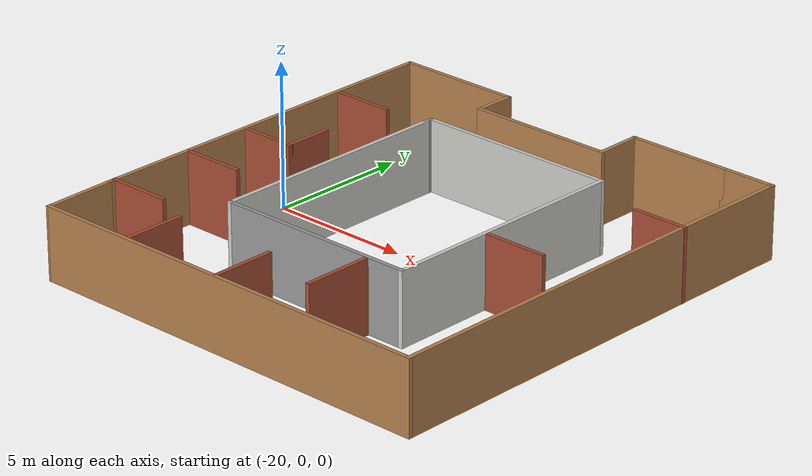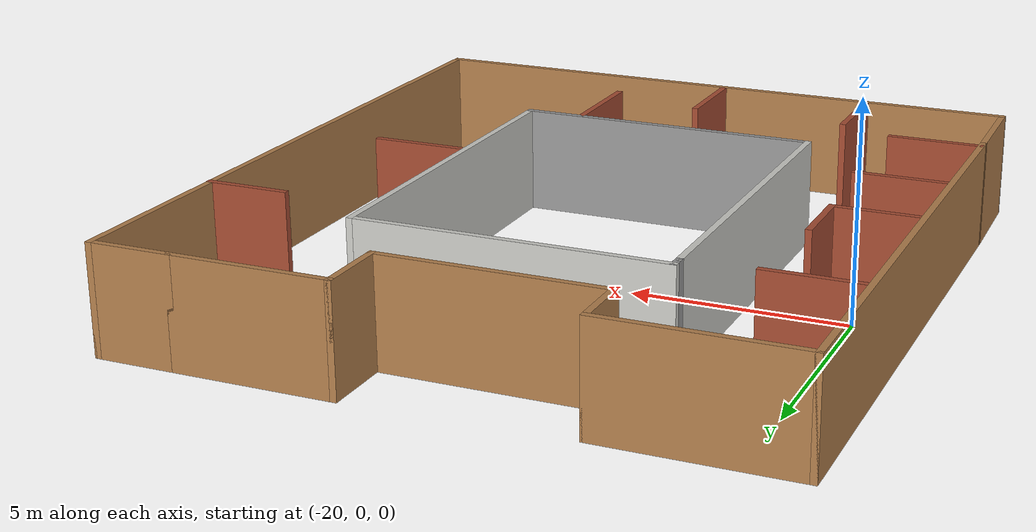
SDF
<?xml version='1.0'?>
<sdf version='1.6'>
  <model name='BuildingA'>
    <pose frame=''>-13.8778 -0.545531 0 0 -0 0</pose>
    <link name='Wall_36'>
      <collision name='Wall_36_Collision'>
        <geometry>
          <box>
            <size>8.75 0.15 2.5</size>
          </box>
        </geometry>
        <pose frame=''>0 0 1.25 0 -0 0</pose>
      </collision>
      <visual name='Wall_36_Visual'>
        <pose frame=''>0 0 1.25 0 -0 0</pose>
        <geometry>
          <box>
            <size>8.75 0.15 2.5</size>
          </box>
        </geometry>
        <material>
          <script>
            <uri>file://media/materials/scripts/gazebo.material</uri>
            <name>Gazebo/CeilingTiled</name>
          </script>
          <ambient>1 1 1 1</ambient>
        </material>
        <meta>
          <layer>0</layer>
        </meta>
      </visual>
      <pose frame=''>-3.663 0.207205 0 0 0 -1.5708</pose>
    </link>
    <link name='Wall_37'>
      <collision name='Wall_37_Collision'>
        <geometry>
          <box>
            <size>7.25 0.15 2.5</size>
          </box>
        </geometry>
        <pose frame=''>0 0 1.25 0 -0 0</pose>
      </collision>
      <visual name='Wall_37_Visual'>
        <pose frame=''>0 0 1.25 0 -0 0</pose>
        <geometry>
          <box>
            <size>7.25 0.15 2.5</size>
          </box>
        </geometry>
        <material>
          <script>
            <uri>file://media/materials/scripts/gazebo.material</uri>
            <name>Gazebo/Grey</name>
          </script>
          <ambient>1 1 1 1</ambient>
        </material>
        <meta>
          <layer>0</layer>
        </meta>
      </visual>
      <pose frame=''>-0.113004 -4.09279 0 0 -0 0</pose>
    </link>
    <link name='Wall_38'>
      <collision name='Wall_38_Collision'>
        <geometry>
          <box>
            <size>9 0.15 2.5</size>
          </box>
        </geometry>
        <pose frame=''>0 0 1.25 0 -0 0</pose>
      </collision>
      <visual name='Wall_38_Visual'>
        <pose frame=''>0 0 1.25 0 -0 0</pose>
        <geometry>
          <box>
            <size>9 0.15 2.5</size>
          </box>
        </geometry>
        <material>
          <script>
            <uri>file://media/materials/scripts/gazebo.material</uri>
            <name>Gazebo/CeilingTiled</name>
          </script>
          <ambient>1 1 1 1</ambient>
        </material>
        <meta>
          <layer>0</layer>
        </meta>
      </visual>
      <pose frame=''>3.437 0.332205 0 0 -0 1.5708</pose>
    </link>
    <link name='Wall_39'>
      <collision name='Wall_39_Collision'>
        <geometry>
          <box>
            <size>7.25 0.15 2.5</size>
          </box>
        </geometry>
        <pose frame=''>0 0 1.25 0 -0 0</pose>
      </collision>
      <visual name='Wall_39_Visual'>
        <pose frame=''>0 0 1.25 0 -0 0</pose>
        <geometry>
          <box>
            <size>7.25 0.15 2.5</size>
          </box>
        </geometry>
        <material>
          <script>
            <uri>file://media/materials/scripts/gazebo.material</uri>
            <name>Gazebo/CeilingTiled</name>
          </script>
          <ambient>1 1 1 1</ambient>
        </material>
        <meta>
          <layer>0</layer>
        </meta>
      </visual>
      <pose frame=''>-0.113004 4.7572 0 0 -0 3.14159</pose>
    </link>
    <link name='Wall_40'>
      <collision name='Wall_40_Collision'>
        <geometry>
          <box>
            <size>0.15 0.15 2.5</size>
          </box>
        </geometry>
        <pose frame=''>0 0 1.25 0 -0 0</pose>
      </collision>
      <visual name='Wall_40_Visual'>
        <pose frame=''>0 0 1.25 0 -0 0</pose>
        <geometry>
          <box>
            <size>0.15 0.15 2.5</size>
          </box>
        </geometry>
        <material>
          <script>
            <uri>file://media/materials/scripts/gazebo.material</uri>
            <name>Gazebo/Grey</name>
          </script>
          <ambient>1 1 1 1</ambient>
        </material>
        <meta>
          <layer>0</layer>
        </meta>
      </visual>
      <pose frame=''>-3.663 4.7572 0 0 -0 0</pose>
    </link>
    <link name='Wall_41'>
      <collision name='Wall_41_Collision'>
        <geometry>
          <box>
            <size>0.4 0.15 2.5</size>
          </box>
        </geometry>
        <pose frame=''>0 0 1.25 0 -0 0</pose>
      </collision>
      <visual name='Wall_41_Visual'>
        <pose frame=''>0 0 1.25 0 -0 0</pose>
        <geometry>
          <box>
            <size>0.4 0.15 2.5</size>
          </box>
        </geometry>
        <material>
          <script>
            <uri>file://media/materials/scripts/gazebo.material</uri>
            <name>Gazebo/Grey</name>
          </script>
          <ambient>1 1 1 1</ambient>
        </material>
        <meta>
          <layer>0</layer>
        </meta>
      </visual>
      <pose frame=''>-3.663 4.6322 0 0 0 -1.5708</pose>
    </link>
    <link name='Wall_44'>
      <collision name='Wall_44_Collision'>
        <geometry>
          <box>
            <size>13.5 0.15 2.5</size>
          </box>
        </geometry>
        <pose frame=''>0 0 1.25 0 -0 0</pose>
      </collision>
      <visual name='Wall_44_Visual'>
        <pose frame=''>0 0 1.25 0 -0 0</pose>
        <geometry>
          <box>
            <size>13.5 0.15 2.5</size>
          </box>
        </geometry>
        <material>
          <script>
            <uri>file://media/materials/scripts/gazebo.material</uri>
            <name>Gazebo/Wood</name>
          </script>
          <ambient>1 1 1 1</ambient>
        </material>
        <meta>
          <layer>0</layer>
        </meta>
      </visual>
      <pose frame=''>-7.45479 1.12574 0 0 -0 1.5708</pose>
    </link>
    <link name='Wall_45'>
      <collision name='Wall_45_Collision'>
        <geometry>
          <box>
            <size>4.5 0.15 2.5</size>
          </box>
        </geometry>
        <pose frame=''>0 0 1.25 0 -0 0</pose>
      </collision>
      <visual name='Wall_45_Visual'>
        <pose frame=''>0 0 1.25 0 -0 0</pose>
        <geometry>
          <box>
            <size>4.5 0.15 2.5</size>
          </box>
        </geometry>
        <material>
          <script>
            <uri>file://media/materials/scripts/gazebo.material</uri>
            <name>Gazebo/Wood</name>
          </script>
          <ambient>1 1 1 1</ambient>
        </material>
        <meta>
          <layer>0</layer>
        </meta>
      </visual>
      <pose frame=''>-5.27979 7.80074 0 0 -0 0</pose>
    </link>
    <link name='Wall_46'>
      <collision name='Wall_46_Collision'>
        <geometry>
          <box>
            <size>1.5 0.15 2.5</size>
          </box>
        </geometry>
        <pose frame=''>0 0 1.25 0 -0 0</pose>
      </collision>
      <visual name='Wall_46_Visual'>
        <pose frame=''>0 0 1.25 0 -0 0</pose>
        <geometry>
          <box>
            <size>1.5 0.15 2.5</size>
          </box>
        </geometry>
        <material>
          <script>
            <uri>file://media/materials/scripts/gazebo.material</uri>
            <name>Gazebo/Wood</name>
          </script>
          <ambient>1 1 1 1</ambient>
        </material>
        <meta>
          <layer>0</layer>
        </meta>
      </visual>
      <pose frame=''>-3.10479 7.12574 0 0 0 -1.5708</pose>
    </link>
    <link name='Wall_47'>
      <collision name='Wall_47_Collision'>
        <geometry>
          <box>
            <size>5.25 0.15 2.5</size>
          </box>
        </geometry>
        <pose frame=''>0 0 1.25 0 -0 0</pose>
      </collision>
      <visual name='Wall_47_Visual'>
        <pose frame=''>0 0 1.25 0 -0 0</pose>
        <geometry>
          <box>
            <size>5.25 0.15 2.5</size>
          </box>
        </geometry>
        <material>
          <script>
            <uri>file://media/materials/scripts/gazebo.material</uri>
            <name>Gazebo/Wood</name>
          </script>
          <ambient>1 1 1 1</ambient>
        </material>
        <meta>
          <layer>0</layer>
        </meta>
      </visual>
      <pose frame=''>-0.554785 6.45074 0 0 -0 0</pose>
    </link>
    <link name='Wall_48'>
      <collision name='Wall_48_Collision'>
        <geometry>
          <box>
            <size>1.75 0.15 2.5</size>
          </box>
        </geometry>
        <pose frame=''>0 0 1.25 0 -0 0</pose>
      </collision>
      <visual name='Wall_48_Visual'>
        <pose frame=''>0 0 1.25 0 -0 0</pose>
        <geometry>
          <box>
            <size>1.75 0.15 2.5</size>
          </box>
        </geometry>
        <material>
          <script>
            <uri>file://media/materials/scripts/gazebo.material</uri>
            <name>Gazebo/Wood</name>
          </script>
          <ambient>1 1 1 1</ambient>
        </material>
        <meta>
          <layer>0</layer>
        </meta>
      </visual>
      <pose frame=''>1.99521 7.25074 0 0 -0 1.5708</pose>
    </link>
    <link name='Wall_49'>
      <collision name='Wall_49_Collision'>
        <geometry>
          <box>
            <size>3.75 0.15 2.5</size>
          </box>
        </geometry>
        <pose frame=''>0 0 1.25 0 -0 0</pose>
      </collision>
      <visual name='Wall_49_Visual'>
        <pose frame=''>0 0 1.25 0 -0 0</pose>
        <geometry>
          <box>
            <size>3.75 0.15 2.5</size>
          </box>
        </geometry>
        <material>
          <script>
            <uri>file://media/materials/scripts/gazebo.material</uri>
            <name>Gazebo/Wood</name>
          </script>
          <ambient>1 1 1 1</ambient>
        </material>
        <meta>
          <layer>0</layer>
        </meta>
      </visual>
      <pose frame=''>3.79521 8.05074 0 0 -0 0</pose>
    </link>
    <link name='Wall_50'>
      <collision name='Wall_50_Collision'>
        <geometry>
          <box>
            <size>2 0.15 2.5</size>
          </box>
        </geometry>
        <pose frame=''>0 0 1.25 0 -0 0</pose>
      </collision>
      <visual name='Wall_50_Visual'>
        <pose frame=''>0 0 1.25 0 -0 0</pose>
        <geometry>
          <box>
            <size>2 0.15 2.5</size>
          </box>
        </geometry>
        <material>
          <script>
            <uri>file://media/materials/scripts/gazebo.material</uri>
            <name>Gazebo/Wood</name>
          </script>
          <ambient>1 1 1 1</ambient>
        </material>
        <meta>
          <layer>0</layer>
        </meta>
      </visual>
      <pose frame=''>6.52021 8.05074 0 0 -0 0</pose>
    </link>
    <link name='Wall_51'>
      <collision name='Wall_51_Collision'>
        <geometry>
          <box>
            <size>16.25 0.15 2.5</size>
          </box>
        </geometry>
        <pose frame=''>0 0 1.25 0 -0 0</pose>
      </collision>
      <visual name='Wall_51_Visual'>
        <pose frame=''>0 0 1.25 0 -0 0</pose>
        <geometry>
          <box>
            <size>16.25 0.15 2.5</size>
          </box>
        </geometry>
        <material>
          <script>
            <uri>file://media/materials/scripts/gazebo.material</uri>
            <name>Gazebo/Wood</name>
          </script>
          <ambient>1 1 1 1</ambient>
        </material>
        <meta>
          <layer>0</layer>
        </meta>
      </visual>
      <pose frame=''>7.44522 0.000742 0 0 0 -1.5708</pose>
    </link>
    <link name='Wall_52'>
      <collision name='Wall_52_Collision'>
        <geometry>
          <box>
            <size>15 0.15 2.5</size>
          </box>
        </geometry>
        <pose frame=''>0 0 1.25 0 -0 0</pose>
      </collision>
      <visual name='Wall_52_Visual'>
        <pose frame=''>0 0 1.25 0 -0 0</pose>
        <geometry>
          <box>
            <size>15 0.15 2.5</size>
          </box>
        </geometry>
        <material>
          <script>
            <uri>file://media/materials/scripts/gazebo.material</uri>
            <name>Gazebo/Wood</name>
          </script>
          <ambient>1 1 1 1</ambient>
        </material>
        <meta>
          <layer>0</layer>
        </meta>
      </visual>
      <pose frame=''>0.020215 -8.04926 0 0 -0 3.14159</pose>
    </link>
    <link name='Wall_53'>
      <collision name='Wall_53_Collision'>
        <geometry>
          <box>
            <size>2.6505 0.15 2.5</size>
          </box>
        </geometry>
        <pose frame=''>0 0 1.25 0 -0 0</pose>
      </collision>
      <visual name='Wall_53_Visual'>
        <pose frame=''>0 0 1.25 0 -0 0</pose>
        <geometry>
          <box>
            <size>2.6505 0.15 2.5</size>
          </box>
        </geometry>
        <material>
          <script>
            <uri>file://media/materials/scripts/gazebo.material</uri>
            <name>Gazebo/Wood</name>
          </script>
          <ambient>1 1 1 1</ambient>
        </material>
        <meta>
          <layer>0</layer>
        </meta>
      </visual>
      <pose frame=''>-7.42979 -6.79926 0 0 -0 1.59079</pose>
    </link>
    <link name='Wall_55'>
      <collision name='Wall_55_Collision'>
        <geometry>
          <box>
            <size>2.25 0.15 2.5</size>
          </box>
        </geometry>
        <pose frame=''>0 0 1.25 0 -0 0</pose>
      </collision>
      <visual name='Wall_55_Visual'>
        <pose frame=''>0 0 1.25 0 -0 0</pose>
        <geometry>
          <box>
            <size>2.25 0.15 2.5</size>
          </box>
        </geometry>
        <material>
          <script>
            <uri>file://media/materials/scripts/gazebo.material</uri>
            <name>Gazebo/Bricks</name>
          </script>
          <ambient>1 1 1 1</ambient>
        </material>
        <meta>
          <layer>0</layer>
        </meta>
      </visual>
      <pose frame=''>-6.32235 4.36982 0 0 -0 0</pose>
    </link>
    <link name='Wall_57'>
      <collision name='Wall_57_Collision'>
        <geometry>
          <box>
            <size>2 0.15 2.5</size>
          </box>
        </geometry>
        <pose frame=''>0 0 1.25 0 -0 0</pose>
      </collision>
      <visual name='Wall_57_Visual'>
        <pose frame=''>0 0 1.25 0 -0 0</pose>
        <geometry>
          <box>
            <size>2 0.15 2.5</size>
          </box>
        </geometry>
        <material>
          <script>
            <uri>file://media/materials/scripts/gazebo.material</uri>
            <name>Gazebo/Bricks</name>
          </script>
          <ambient>1 1 1 1</ambient>
        </material>
        <meta>
          <layer>0</layer>
        </meta>
      </visual>
      <pose frame=''>-6.3924 0.193367 0 0 -0 0</pose>
    </link>
    <link name='Wall_58'>
      <collision name='Wall_58_Collision'>
        <geometry>
          <box>
            <size>1.75 0.15 2.5</size>
          </box>
        </geometry>
        <pose frame=''>0 0 1.25 0 -0 0</pose>
      </collision>
      <visual name='Wall_58_Visual'>
        <pose frame=''>0 0 1.25 0 -0 0</pose>
        <geometry>
          <box>
            <size>1.75 0.15 2.5</size>
          </box>
        </geometry>
        <material>
          <script>
            <uri>file://media/materials/scripts/gazebo.material</uri>
            <name>Gazebo/Bricks</name>
          </script>
          <ambient>1 1 1 1</ambient>
        </material>
        <meta>
          <layer>0</layer>
        </meta>
      </visual>
      <pose frame=''>-5.4674 0.993367 0 0 -0 1.5708</pose>
    </link>
    <link name='Wall_60'>
      <collision name='Wall_60_Collision'>
        <geometry>
          <box>
            <size>2.25 0.15 2.5</size>
          </box>
        </geometry>
        <pose frame=''>0 0 1.25 0 -0 0</pose>
      </collision>
      <visual name='Wall_60_Visual'>
        <pose frame=''>0 0 1.25 0 -0 0</pose>
        <geometry>
          <box>
            <size>2.25 0.15 2.5</size>
          </box>
        </geometry>
        <material>
          <script>
            <uri>file://media/materials/scripts/gazebo.material</uri>
            <name>Gazebo/Bricks</name>
          </script>
          <ambient>1 1 1 1</ambient>
        </material>
        <meta>
          <layer>0</layer>
        </meta>
      </visual>
      <pose frame=''>-6.34983 -2.27953 0 0 -0 0</pose>
    </link>
    <link name='Wall_62'>
      <collision name='Wall_62_Collision'>
        <geometry>
          <box>
            <size>2.25 0.15 2.5</size>
          </box>
        </geometry>
        <pose frame=''>0 0 1.25 0 -0 0</pose>
      </collision>
      <visual name='Wall_62_Visual'>
        <pose frame=''>0 0 1.25 0 -0 0</pose>
        <geometry>
          <box>
            <size>2.25 0.15 2.5</size>
          </box>
        </geometry>
        <material>
          <script>
            <uri>file://media/materials/scripts/gazebo.material</uri>
            <name>Gazebo/Bricks</name>
          </script>
          <ambient>1 1 1 1</ambient>
        </material>
        <meta>
          <layer>0</layer>
        </meta>
      </visual>
      <pose frame=''>-6.37768 -5.35015 0 0 -0 0</pose>
    </link>
    <link name='Wall_64'>
      <collision name='Wall_64_Collision'>
        <geometry>
          <box>
            <size>2.25 0.15 2.5</size>
          </box>
        </geometry>
        <pose frame=''>0 0 1.25 0 -0 0</pose>
      </collision>
      <visual name='Wall_64_Visual'>
        <pose frame=''>0 0 1.25 0 -0 0</pose>
        <geometry>
          <box>
            <size>2.25 0.15 2.5</size>
          </box>
        </geometry>
        <material>
          <script>
            <uri>file://media/materials/scripts/gazebo.material</uri>
            <name>Gazebo/Bricks</name>
          </script>
          <ambient>1 1 1 1</ambient>
        </material>
        <meta>
          <layer>0</layer>
        </meta>
      </visual>
      <pose frame=''>-4.00985 -6.97139 0 0 -0 1.5708</pose>
    </link>
    <link name='Wall_66'>
      <collision name='Wall_66_Collision'>
        <geometry>
          <box>
            <size>2.25 0.15 2.5</size>
          </box>
        </geometry>
        <pose frame=''>0 0 1.25 0 -0 0</pose>
      </collision>
      <visual name='Wall_66_Visual'>
        <pose frame=''>0 0 1.25 0 -0 0</pose>
        <geometry>
          <box>
            <size>2.25 0.15 2.5</size>
          </box>
        </geometry>
        <material>
          <script>
            <uri>file://media/materials/scripts/gazebo.material</uri>
            <name>Gazebo/Bricks</name>
          </script>
          <ambient>1 1 1 1</ambient>
        </material>
        <meta>
          <layer>0</layer>
        </meta>
      </visual>
      <pose frame=''>-0.252044 -6.92322 0 0 -0 1.5708</pose>
    </link>
    <link name='Wall_68'>
      <collision name='Wall_68_Collision'>
        <geometry>
          <box>
            <size>2.5 0.15 2.5</size>
          </box>
        </geometry>
        <pose frame=''>0 0 1.25 0 -0 0</pose>
      </collision>
      <visual name='Wall_68_Visual'>
        <pose frame=''>0 0 1.25 0 -0 0</pose>
        <geometry>
          <box>
            <size>2.5 0.15 2.5</size>
          </box>
        </geometry>
        <material>
          <script>
            <uri>file://media/materials/scripts/gazebo.material</uri>
            <name>Gazebo/Bricks</name>
          </script>
          <ambient>1 1 1 1</ambient>
        </material>
        <meta>
          <layer>0</layer>
        </meta>
      </visual>
      <pose frame=''>2.08454 -5.36633 0 0 0 -1.5708</pose>
    </link>
    <link name='Wall_71'>
      <collision name='Wall_71_Collision'>
        <geometry>
          <box>
            <size>2.25 0.15 2.5</size>
          </box>
        </geometry>
        <pose frame=''>0 0 1.25 0 -0 0</pose>
      </collision>
      <visual name='Wall_71_Visual'>
        <pose frame=''>0 0 1.25 0 -0 0</pose>
        <geometry>
          <box>
            <size>2.25 0.15 2.5</size>
          </box>
        </geometry>
        <material>
          <script>
            <uri>file://media/materials/scripts/gazebo.material</uri>
            <name>Gazebo/Bricks</name>
          </script>
          <ambient>1 1 1 1</ambient>
        </material>
        <meta>
          <layer>0</layer>
        </meta>
      </visual>
      <pose frame=''>4.62803 -0.505788 0 0 -0 0</pose>
    </link>
    <link name='Wall_73'>
      <collision name='Wall_73_Collision'>
        <geometry>
          <box>
            <size>2 0.15 2.5</size>
          </box>
        </geometry>
        <pose frame=''>0 0 1.25 0 -0 0</pose>
      </collision>
      <visual name='Wall_73_Visual'>
        <pose frame=''>0 0 1.25 0 -0 0</pose>
        <geometry>
          <box>
            <size>2 0.15 2.5</size>
          </box>
        </geometry>
        <material>
          <script>
            <uri>file://media/materials/scripts/gazebo.material</uri>
            <name>Gazebo/Bricks</name>
          </script>
          <ambient>1 1 1 1</ambient>
        </material>
        <meta>
          <layer>0</layer>
        </meta>
      </visual>
      <pose frame=''>6.53127 3.83014 0 0 -0 3.14159</pose>
    </link>
    <static>1</static>
  </model>
</sdf>
